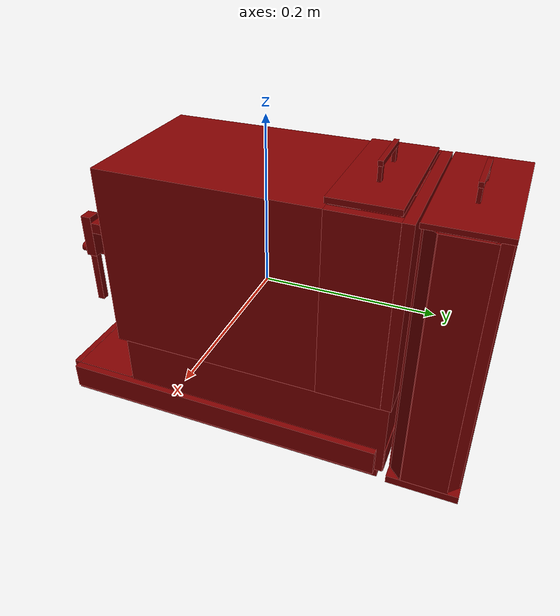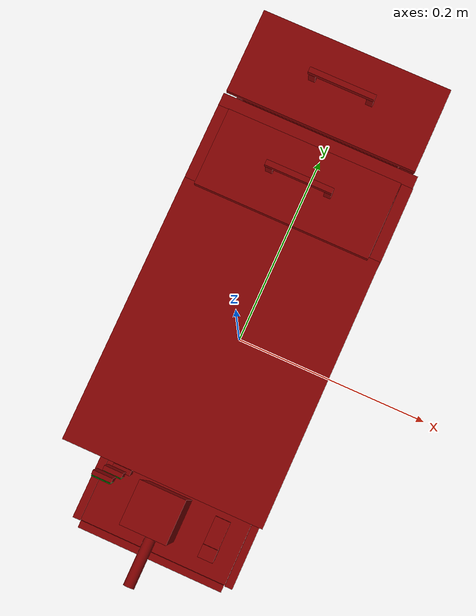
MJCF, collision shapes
<?xml version='1.0' encoding='UTF-8'?>
<mujoco model="model">
  <compiler angle="radian"/>
  <asset>
    <mesh file="visuals/Body001.obj" name="Body001_vis"/>
    <mesh file="visuals/Button001.obj" name="Button001_vis"/>
    <mesh file="visuals/Button002.obj" name="Button002_vis"/>
    <mesh file="visuals/Button003.obj" name="Button003_vis"/>
    <mesh file="visuals/Container001_Clear.obj" name="Container001_Clear_vis"/>
    <mesh file="visuals/Lever001.obj" name="Lever001_vis"/>
    <mesh file="visuals/Lid001.obj" name="Lid001_vis"/>
    <mesh file="visuals/Lid002.obj" name="Lid002_vis"/>
    <mesh file="visuals/Lid003.obj" name="Lid003_vis"/>
    <texture file="visuals/T_BC001.png" name="Body001_material" type="2d"/>
    <material name="Body001_material" rgba="1 1 1 1.0" texture="Body001_material" shininess="1" specular="1"/>
    <texture file="visuals/T_BC001.png" name="Button001_material" type="2d"/>
    <material name="Button001_material" rgba="1 1 1 1.0" texture="Button001_material" shininess="1" specular="1"/>
    <texture file="visuals/T_BC001.png" name="Button002_material" type="2d"/>
    <material name="Button002_material" rgba="1 1 1 1.0" texture="Button002_material" shininess="1" specular="1"/>
    <texture file="visuals/T_BC001.png" name="Button003_material" type="2d"/>
    <material name="Button003_material" rgba="1 1 1 1.0" texture="Button003_material" shininess="1" specular="1"/>
    <texture file="visuals/T_BC001.png" name="Container001_Clear_material" type="2d"/>
    <material name="Container001_Clear_material" rgba="1 1 1 0.38776886463165283" texture="Container001_Clear_material" shininess="0.6716873347759247" specular="0.3103448502657381"/>
    <texture file="visuals/T_BC001.png" name="Lid003_material" type="2d"/>
    <material name="Lid003_material" rgba="1 1 1 1.0" texture="Lid003_material" shininess="1" specular="1"/>
    <texture file="visuals/T_BC001.png" name="Lever001_material" type="2d"/>
    <material name="Lever001_material" rgba="1 1 1 1.0" texture="Lever001_material" shininess="1" specular="1"/>
    <texture file="visuals/T_BC001.png" name="Lid001_material" type="2d"/>
    <material name="Lid001_material" rgba="1 1 1 1.0" texture="Lid001_material" shininess="1" specular="1"/>
    <texture file="visuals/T_BC001.png" name="Lid002_material" type="2d"/>
    <material name="Lid002_material" rgba="1 1 1 1.0" texture="Lid002_material" shininess="1" specular="1"/>
  </asset>
  <default>
    <default class="visual">
      <geom conaffinity="0" contype="0" group="1" type="mesh"/>
    </default>
    <default class="collision">
      <geom group="0" rgba="0.5 0 0 0.5"/>
    </default>
    <default class="spawn">
      <geom group="0" rgba="1 1 1 0.5" contype="0" conaffinity="0"/>
      <site group="0" rgba="1 1 1 0.5"/>
    </default>
    <default class="region">
      <geom group="1" conaffinity="0" contype="0" rgba="0 1 0 0"/>
    </default>
  </default>
  <worldbody>
    <body>
      <body name="object">
        <geom class="collision" type="box" pos="-0.055221 -0.177233 0.094205" size="0.009489418007433414 0.009489409625530243 0.00037086158408783376" quat="0.6650007963180542 0.7468426823616028 0.0 0.0" name="start_button_1" rgba="0.0 0.5 0 0.5"/>
        <geom class="collision" type="box" pos="-0.055221 -0.171377 0.032008" size="0.009489418007433414 0.009489409625530243 0.00037086158408783376" quat="0.6650007963180542 0.7468426823616028 0.0 0.0" name="start_button_2" rgba="0.0 0.5 0 0.5"/>
        <site type="cylinder" rgba="0.8 0.5 0.25 1" size="0.0012339369859546423 0.07050367444753647" pos="0.000448 -0.189969 -0.084817" name="coffee_liquid"/>
        <site rgba="0 0 0 0" size="0.009999999776482582 0.009999999776482582" pos="0.000448 -0.190267 -0.142439" name="receptacle_place_site"/>
        <geom mesh="Body001_vis" type="mesh" solimp="0.998 0.998 0.001" solref="0.001 1" density="100" friction="0.95 0.3 0.1" class="visual" material="Body001_material"/>
        <geom class="collision" type="box" pos="0.000287 -0.240026 -0.152862" size="0.08551939576864243 0.004131642635911703 0.0162187572568655" quat="1.0 0.0 0.0 0.0"/>
        <geom class="collision" type="box" pos="-0.090677 -0.033186 -0.152862" size="0.004453880712389946 0.20326147973537445 0.0162187572568655" quat="1.0 0.0 0.0 0.0"/>
        <geom class="collision" type="box" pos="0.091290 -0.033186 -0.152862" size="0.004443179816007614 0.20326147973537445 0.0162187572568655" quat="1.0 0.0 0.0 0.0"/>
        <geom class="collision" type="box" pos="0.000046 0.175950 -0.152862" size="0.08680050820112228 0.004243033938109875 0.0162187572568655" quat="1.0 0.0 0.0 0.0"/>
        <geom class="collision" type="box" pos="0.000091 0.013447 -0.119084" size="0.08799206465482712 0.16572171449661255 0.049996744841337204" quat="1.0 0.0 0.0 0.0"/>
        <geom class="collision" type="box" pos="0.000287 -0.030520 0.041469" size="0.09500367194414139 0.12773941457271576 0.11051249504089355" quat="1.0 0.0 0.0 0.0"/>
        <geom class="collision" type="box" pos="-0.000315 -0.185711 0.049779" size="0.02318122424185276 0.02210974507033825 0.05239607021212578" quat="1.0 0.0 0.0 0.0"/>
        <geom class="collision" type="box" pos="0.059485 -0.200337 0.049380" size="0.007637682370841503 0.006357100326567888 0.025456581264734268" quat="1.0 0.0 0.0 0.0"/>
        <geom class="collision" type="box" pos="0.059485 -0.180144 0.061664" size="0.007637684233486652 0.013836104422807693 0.006357102654874325" quat="1.0 0.0 0.0 0.0"/>
        <geom class="collision" type="box" pos="0.059485 -0.200521 -0.008115" size="0.004280756693333387 0.004131534602493048 0.03203903138637543" quat="1.0 0.0 0.0 0.0"/>
        <geom class="collision" type="box" pos="0.000287 -0.035449 -0.174970" size="0.08551939576864243 0.20870907604694366 0.007399493828415871" quat="1.0 0.0 0.0 0.0"/>
        <geom class="collision" type="box" pos="0.000287 0.176151 0.041469" size="0.09500367194414139 0.0059957681223750114 0.11051249504089355" quat="1.0 0.0 0.0 0.0"/>
        <geom class="collision" type="box" pos="-0.089214 0.133336 0.041469" size="0.0055023240856826305 0.03681967034935951 0.11051249504089355" quat="1.0 0.0 0.0 0.0"/>
        <geom class="collision" type="box" pos="0.090244 0.133336 0.041469" size="0.0055023240856826305 0.03681967034935951 0.11051249504089355" quat="1.0 0.0 0.0 0.0"/>
        <geom class="collision" type="box" pos="-0.000123 0.133336 0.021715" size="0.08439595997333527 0.03681967034935951 0.09075792133808136" quat="1.0 0.0 0.0 0.0"/>
        <geom class="collision" type="box" pos="0.000286 0.163693 0.131889" size="0.03368164226412773 0.0060638743452727795 0.020093092694878578" quat="1.0 0.0 0.0 0.0"/>
        <geom class="collision" type="box" pos="0.000286 0.102238 0.131889" size="0.03368164226412773 0.006829994730651379 0.020093092694878578" quat="1.0 0.0 0.0 0.0"/>
        <body name="Button001">
          <joint axis="0.0 1.0 0.0" pos="-0.055341 -0.168699 0.032325" limited="true" name="Button001_joint" range="0.0 0.002" type="slide" damping="1" frictionloss="1" armature=".01" stiffness="0.05"/>
          <geom mesh="Button001_vis" type="mesh" solimp="0.998 0.998 0.001" solref="0.001 1" density="100" friction="0.95 0.3 0.1" class="visual" material="Button001_material"/>
          <geom class="collision" type="box" pos="-0.055343 -0.168208 0.032449" size="0.009889342822134495 0.009974039159715176 0.0024609060492366552" quat="0.6713261604309082 0.7411620616912842 0.0 0.0"/>
        </body>
        <body name="Button002">
          <joint axis="0.0 1.0 0.0" pos="-0.055556 -0.163323 -0.030190" limited="true" name="Button002_joint" range="0.0 0.002" type="slide" damping="1" frictionloss="1" armature=".01" stiffness="0.05"/>
          <geom mesh="Button002_vis" type="mesh" solimp="0.998 0.998 0.001" solref="0.001 1" density="100" friction="0.95 0.3 0.1" class="visual" material="Button002_material"/>
          <geom class="collision" type="box" pos="-0.055547 -0.164016 -0.030190" size="0.00988172460347414 0.009981672279536724 0.0028996325563639402" quat="0.6650007963180542 0.7468426823616028 0.0 0.0"/>
        </body>
        <body name="Button003">
          <joint axis="0.0 1.0 0.0" pos="-0.055299 -0.174301 0.094430" limited="true" name="Button003_joint" range="0.0 0.002" type="slide" damping="1" frictionloss="1" armature=".01" stiffness="0.05"/>
          <geom mesh="Button003_vis" type="mesh" solimp="0.998 0.998 0.001" solref="0.001 1" density="100" friction="0.95 0.3 0.1" class="visual" material="Button003_material"/>
          <geom class="collision" type="box" pos="-0.055286 -0.174051 0.094482" size="0.009846202097833157 0.009936113841831684 0.0022085460368543863" quat="0.6650007963180542 0.7468426823616028 0.0 0.0"/>
        </body>
        <body name="Container001_Clear">
          <joint axis="0.0 0.0 1.0" pos="-0.000002 0.226150 -0.017531" limited="true" name="Container001_Clear_joint" range="0.0 0.05" type="slide" damping="1" frictionloss="1" armature=".01" stiffness="0.05"/>
          <geom mesh="Container001_Clear_vis" type="mesh" solimp="0.998 0.998 0.001" solref="0.001 1" density="100" friction="0.95 0.3 0.1" class="visual" material="Container001_Clear_material"/>
          <geom class="collision" type="box" pos="-0.000997 0.226304 -0.175575" size="0.09226977825164795 0.04147570952773094 0.005120804999023676" quat="1.0 0.0 0.0 0.0"/>
          <geom class="collision" type="box" pos="-0.000997 0.265742 -0.012410" size="0.07654381543397903 0.002037612721323967 0.15804454684257507" quat="1.0 0.0 0.0 0.0"/>
          <geom class="collision" type="box" pos="-0.000997 0.186702 -0.012410" size="0.07654381543397903 0.002037612721323967 0.15804454684257507" quat="1.0 0.0 0.0 0.0"/>
          <geom class="collision" type="box" pos="-0.090348 0.228175 -0.012410" size="0.02649548090994358 0.0015371480258181691 0.15804454684257507" quat="0.7071068286895752 0.0 -0.0 -0.7071067690849304"/>
          <geom class="collision" type="box" pos="0.089875 0.228175 -0.012410" size="0.02649548090994358 0.0015371480258181691 0.15804454684257507" quat="0.7071068286895752 0.0 -0.0 -0.7071067690849304"/>
          <geom class="collision" type="box" pos="-0.083414 0.258051 -0.012410" size="0.00992826372385025 0.0015371480258181691 0.15804454684257507" quat="0.38268354535102844 0.0 -0.0 -0.9238795042037964"/>
          <geom class="collision" type="box" pos="-0.083414 0.194952 -0.012410" size="0.00992826372385025 0.0015371480258181691 0.15804454684257507" quat="0.38268330693244934 0.0 0.0 0.9238795638084412"/>
          <geom class="collision" type="box" pos="0.083041 0.194952 -0.012410" size="0.00992826372385025 0.0015371480258181691 0.15804454684257507" quat="0.38268354535102844 0.0 -0.0 -0.9238795042037964"/>
          <geom class="collision" type="box" pos="0.083041 0.258051 -0.012410" size="0.00992826372385025 0.0015371480258181691 0.15804454684257507" quat="0.382683664560318 0.0 0.0 0.9238794445991516"/>
          <body name="Lid003">
            <joint axis="0.0 0.0 1.0" pos="-0.000000 0.226150 0.152753" limited="true" name="Lid003_joint" range="0.0 0.08" type="slide" damping="1" frictionloss="1" armature=".01" stiffness="0.05"/>
            <geom mesh="Lid003_vis" type="mesh" solimp="0.998 0.998 0.001" solref="0.001 1" density="100" friction="0.95 0.3 0.1" class="visual" material="Lid003_material"/>
            <geom class="collision" type="box" pos="-0.000997 0.226304 0.150343" size="0.09226977825164795 0.04147570952773094 0.0029297766741365194" quat="1.0 0.0 0.0 0.0"/>
            <geom class="collision" type="box" pos="-0.027233 0.226150 0.160762" size="0.0033368850126862526 0.0021753578912466764 0.00844417791813612" quat="1.0 0.0 0.0 0.0"/>
            <geom class="collision" type="box" pos="0.028972 0.226150 0.160762" size="0.0033368850126862526 0.0021753578912466764 0.00844417791813612" quat="1.0 0.0 0.0 0.0"/>
            <geom class="collision" type="box" pos="0.000692 0.226150 0.171654" size="0.03203897178173065 0.002676493488252163 0.0027901495341211557" quat="1.0 0.0 0.0 0.0"/>
          </body>
        </body>
        <body name="Lever001">
          <joint axis="0.0 0.0 -1.0" pos="0.000448 -0.189969 -0.009635" limited="true" name="Lever001_joint" range="0.0 1.5707963267948966" type="hinge" damping="1" frictionloss="1" armature=".01" stiffness="0.01" springref="-0.1"/>
          <geom mesh="Lever001_vis" type="mesh" solimp="0.998 0.998 0.001" solref="0.001 1" density="100" friction="0.95 0.3 0.1" class="visual" material="Lever001_material"/>
          <geom class="collision" type="cylinder" pos="0.000335 -0.235353 -0.010922" size="0.005842080805450678 0.030937686562538147" quat="0.7071068286895752 0.7071067690849304 0.0 0.0"/>
          <geom class="collision" type="cylinder" pos="0.000000 -0.189636 -0.007411" size="0.014752695336937904 0.005440313369035721" quat="1.0 0.0 0.0 0.0"/>
          <geom class="collision" type="cylinder" pos="0.000000 -0.189636 -0.015234" size="0.0060104988515377045 0.0026581203565001488" quat="1.0 0.0 0.0 0.0"/>
        </body>
        <body name="Lid001">
          <joint axis="0.0 0.0 1.0" pos="0.000287 -0.199939 -0.137273" limited="true" name="Lid001_joint" range="0.0 0.05" type="slide" damping="1" frictionloss="1" armature=".01" stiffness="0.05" springref="-20"/>
          <geom mesh="Lid001_vis" type="mesh" solimp="0.998 0.998 0.001" solref="0.001 1" density="100" friction="0.95 0.3 0.1" class="visual" material="Lid001_material"/>
          <geom class="collision" type="box" pos="0.000287 -0.195800 -0.137057" size="0.0862438976764679 0.0395965576171875 0.0006915613193996251" quat="1.0 0.0 0.0 0.0"/>
        </body>
        <body name="Lid002">
          <joint axis="0.0 0.0 1.0" pos="0.000287 0.133338 0.166318" limited="true" name="Lid002_joint" range="0.0 0.08" type="slide" damping="1" frictionloss="1" armature=".01" stiffness="0.05" springref="-15"/>
          <geom mesh="Lid002_vis" type="mesh" solimp="0.998 0.998 0.001" solref="0.001 1" density="100" friction="0.95 0.3 0.1" class="visual" material="Lid002_material"/>
          <geom class="collision" type="box" pos="0.000287 0.131167 0.155736" size="0.08390777558088303 0.037398070096969604 0.0032429215498268604" quat="1.0 0.0 0.0 0.0"/>
          <geom class="collision" type="box" pos="0.000692 0.131891 0.177906" size="0.03203897178173065 0.002676493488252163 0.0027901495341211557" quat="1.0 0.0 0.0 0.0"/>
          <geom class="collision" type="box" pos="0.028972 0.131891 0.167014" size="0.0033368850126862526 0.0021753578912466764 0.00844417791813612" quat="1.0 0.0 0.0 0.0"/>
          <geom class="collision" type="box" pos="-0.027233 0.131891 0.167014" size="0.0033368850126862526 0.0021753578912466764 0.00844417791813612" quat="1.0 0.0 0.0 0.0"/>
        </body>
        <geom class="region" name="reg_main" type="box" pos="0.0 0.01213249999999999 -0.010922000000000001" size="0.09531 0.2543375 0.16977399999999998"/>
      </body>
    </body>
  </worldbody>
  <actuator>
    <motor name="Button001_joint_actuator" joint="Button001_joint" gear="0.5"/>
    <motor name="Button002_joint_actuator" joint="Button002_joint" gear="0.5"/>
    <motor name="Button003_joint_actuator" joint="Button003_joint" gear="0.5"/>
    <motor name="Container001_Clear_joint_actuator" joint="Container001_Clear_joint" gear="10"/>
    <motor name="Lever001_joint_actuator" joint="Lever001_joint" gear="10"/>
    <motor name="Lid001_joint_actuator" joint="Lid001_joint" gear="10"/>
    <motor name="Lid002_joint_actuator" joint="Lid002_joint" gear="10"/>
    <motor name="Lid003_joint_actuator" joint="Lid003_joint" gear="10"/>
  </actuator>
</mujoco>
